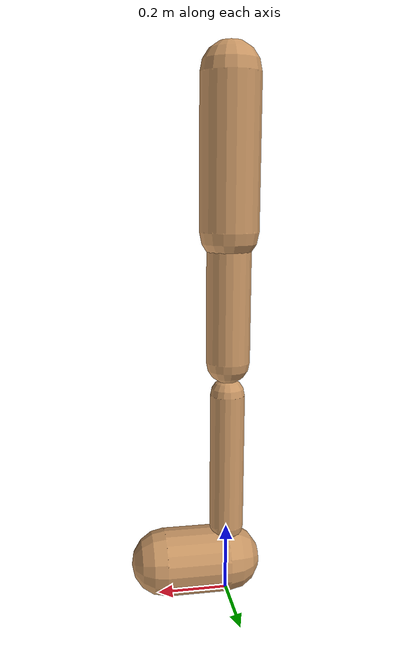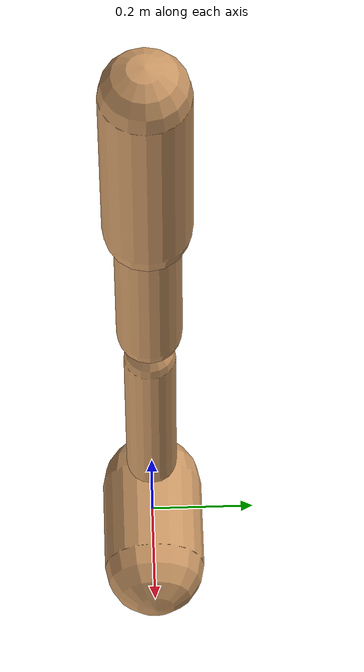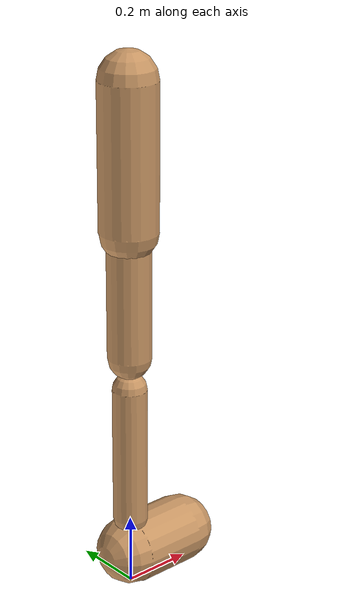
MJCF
<mujoco model="walker2d">
  <compiler angle="degree" coordinate="global" inertiafromgeom="true" />
  <default>
    <joint armature="0.01" damping=".1" limited="true" />
    <geom conaffinity="0" condim="3" contype="1" density="1000" friction="0.8 .1 .1" rgba="0.8 0.6 .4 1" />
  </default>
  <option integrator="RK4" timestep="0.002" />
  <worldbody>

    <body name="torso" pos="0 0 -0.20042613397706918">
      <joint armature="0" axis="1 0 0" damping="0" limited="false" name="ignorex" pos="0 0 0" stiffness="0" type="slide" />
      <joint armature="0" axis="0 0 1" damping="0" limited="false" name="ignorez" pos="0 0 0" ref="1.25" stiffness="0" type="slide" />
      <joint armature="0" axis="0 1 0" damping="0" limited="false" name="ignorey" pos="0 0 0" stiffness="0" type="hinge" />
      <geom fromto="0 0 1.45 0 0 1.05" name="torso_geom" size="0.08031395891797283" type="capsule" />
      <body name="thigh">
        <joint axis="0 -1 0" name="thigh_joint" pos="0 0 1.05" range="-150 0" type="hinge" />
        <geom fromto="0.0 0.0 1.05 0.0 0.0 0.6949386950417696" name="thigh_geom" size="0.060706610188738325" type="capsule" />
        <body name="leg" pos="0.0 0.0 0.09493869504176966">
          <joint axis="0 -1 0" name="leg_joint" pos="0 0 0.6" range="-150 0" type="hinge" />
          <geom fromto="0.0 0.0 0.6 0.0 0.0 0.20548743893529958" name="leg_geom" size="0.048565288150990656" type="capsule" />
          <body name="foot" pos="0.0 0.0 0.10548743893529958">
            <joint axis="0 -1 0" name="foot_joint" pos="0 0 0.1" range="-45 45" type="hinge" />
            <geom fromto="0.0 0.0 0.1 0.18062610168812823 0.0 0.1" name="foot_geom" size="0.09657148438047951" type="capsule" />
          </body>
        </body>
      </body>

      <body name="thigh_left">
        <joint axis="0 -1 0" name="thigh_left_joint" pos="0 0 1.05" range="-150 0" type="hinge" />
        <geom fromto="0.0 0.0 1.05 0.0 0.0 0.6949386950417696" name="thigh_left_geom" rgba=".7 .3 .6 1" size="0.060706610188738325" type="capsule" />
        <body name="leg_left" pos="0.0 0.0 0.09493869504176966">
          <joint axis="0 -1 0" name="leg_left_joint" pos="0 0 0.6" range="-150 0" type="hinge" />
          <geom fromto="0.0 0.0 0.6 0.0 0.0 0.20548743893529958" name="leg_left_geom" rgba=".7 .3 .6 1" size="0.048565288150990656" type="capsule" />
          <body name="foot_left" pos="0.0 0.0 0.10548743893529958">
            <joint axis="0 -1 0" name="foot_left_joint" pos="0 0 0.1" range="-45 45" type="hinge" />
            <geom fromto="0.0 0.0 0.1 0.18062610168812823 0.0 0.1" name="foot_left_geom" rgba=".7 .3 .6 1" size="0.09657148438047951" type="capsule" />
          </body>
        </body>
      </body>
    </body>
  </worldbody>
  <actuator>

    <motor ctrllimited="true" ctrlrange="-1.0 1.0" gear="100" joint="thigh_joint" />
    <motor ctrllimited="true" ctrlrange="-1.0 1.0" gear="100" joint="leg_joint" />
    <motor ctrllimited="true" ctrlrange="-1.0 1.0" gear="100" joint="foot_joint" />
    <motor ctrllimited="true" ctrlrange="-1.0 1.0" gear="100" joint="thigh_left_joint" />
    <motor ctrllimited="true" ctrlrange="-1.0 1.0" gear="100" joint="leg_left_joint" />
    <motor ctrllimited="true" ctrlrange="-1.0 1.0" gear="100" joint="foot_left_joint" />

  </actuator>
</mujoco>
